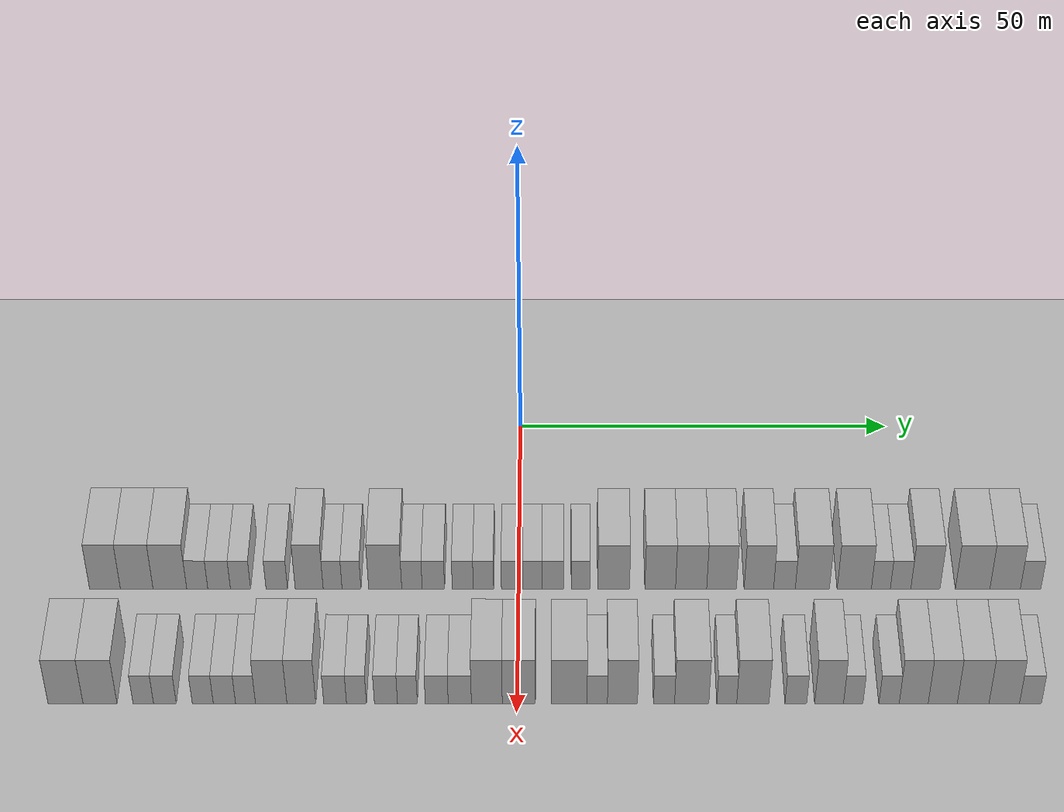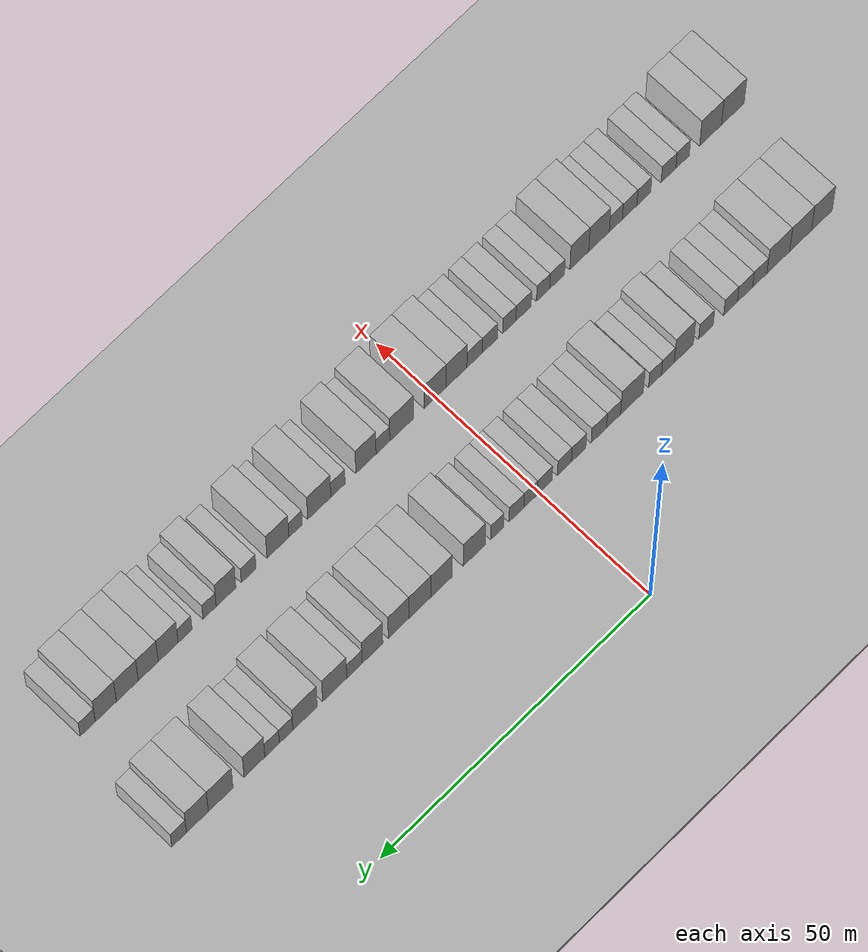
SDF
<sdf version="1.6">
 <world name="default">
  <include><name>ground_plane_1</name><uri>model://HANNAS_ground_plane</uri></include>
  <include>
   <name>ground_plane_2</name>
   <uri>model://HANNAS_ground_plane</uri>
   <pose>100 0 0  0 0 0</pose>
  </include>
  <model name="building_35">
   <static>1</static>
   <pose>25.0000 -53.6690 0 0.000000 0.000000 0.000000</pose>
   <link name="link">
    <pose>0 0 4.50 0 0 0</pose>
    <collision name="collision"><geometry><box><size>10.0000 4.0003 9.0000</size></box></geometry></collision>
    <visual name="visual">
     <cast_shadows>0</cast_shadows>
     <geometry><box><size>10.0000 4.0003 9.0000</size></box></geometry>
     <material>
      <script>
       <uri>model://HANNAS_wall/materials/scripts</uri>
       <uri>model://HANNAS_wall/materials/textures</uri>
       <name>vrc/HANNAS_wall</name>
      </script>
     </material>
    </visual>
   </link>
  </model>
  <model name="building_36">
   <static>1</static>
   <pose>25.0000 -49.5500 0 0.000000 0.000000 0.000000</pose>
   <link name="link">
    <pose>0 0 4.50 0 0 0</pose>
    <collision name="collision"><geometry><box><size>10.0000 4.2375 9.0000</size></box></geometry></collision>
    <visual name="visual">
     <cast_shadows>0</cast_shadows>
     <geometry><box><size>10.0000 4.2375 9.0000</size></box></geometry>
     <material>
      <script>
       <uri>model://HANNAS_wall/materials/scripts</uri>
       <uri>model://HANNAS_wall/materials/textures</uri>
       <name>vrc/HANNAS_wall</name>
      </script>
     </material>
    </visual>
   </link>
  </model>
  <model name="building_37">
   <static>1</static>
   <pose>25.0000 -45.2486 0 0.000000 0.000000 0.000000</pose>
   <link name="link">
    <pose>0 0 4.50 0 0 0</pose>
    <collision name="collision"><geometry><box><size>10.0000 4.3654 9.0000</size></box></geometry></collision>
    <visual name="visual">
     <cast_shadows>0</cast_shadows>
     <geometry><box><size>10.0000 4.3654 9.0000</size></box></geometry>
     <material>
      <script>
       <uri>model://HANNAS_wall/materials/scripts</uri>
       <uri>model://HANNAS_wall/materials/textures</uri>
       <name>vrc/HANNAS_wall</name>
      </script>
     </material>
    </visual>
   </link>
  </model>
  <model name="building_38">
   <static>1</static>
   <pose>25.0000 -41.6955 0 0.000000 0.000000 0.000000</pose>
   <link name="link">
    <pose>0 0 3.00 0 0 0</pose>
    <collision name="collision"><geometry><box><size>10.0000 2.7409 6.0000</size></box></geometry></collision>
    <visual name="visual">
     <cast_shadows>0</cast_shadows>
     <geometry><box><size>10.0000 2.7409 6.0000</size></box></geometry>
     <material>
      <script>
       <uri>model://HANNAS_wall/materials/scripts</uri>
       <uri>model://HANNAS_wall/materials/textures</uri>
       <name>vrc/HANNAS_wall</name>
      </script>
     </material>
    </visual>
   </link>
  </model>
  <model name="building_39">
   <static>1</static>
   <pose>25.0000 -38.8572 0 0.000000 0.000000 0.000000</pose>
   <link name="link">
    <pose>0 0 3.00 0 0 0</pose>
    <collision name="collision"><geometry><box><size>10.0000 2.9356 6.0000</size></box></geometry></collision>
    <visual name="visual">
     <cast_shadows>0</cast_shadows>
     <geometry><box><size>10.0000 2.9356 6.0000</size></box></geometry>
     <material>
      <script>
       <uri>model://HANNAS_wall/materials/scripts</uri>
       <uri>model://HANNAS_wall/materials/textures</uri>
       <name>vrc/HANNAS_wall</name>
      </script>
     </material>
    </visual>
   </link>
  </model>
  <model name="building_40">
   <static>1</static>
   <pose>25.0000 -36.0790 0 0.000000 0.000000 0.000000</pose>
   <link name="link">
    <pose>0 0 3.00 0 0 0</pose>
    <collision name="collision"><geometry><box><size>10.0000 2.6208 6.0000</size></box></geometry></collision>
    <visual name="visual">
     <cast_shadows>0</cast_shadows>
     <geometry><box><size>10.0000 2.6208 6.0000</size></box></geometry>
     <material>
      <script>
       <uri>model://HANNAS_wall/materials/scripts</uri>
       <uri>model://HANNAS_wall/materials/textures</uri>
       <name>vrc/HANNAS_wall</name>
      </script>
     </material>
    </visual>
   </link>
  </model>
  <model name="building_41">
   <static>1</static>
   <pose>25.0000 -31.3737 0 0.000000 0.000000 0.000000</pose>
   <link name="link">
    <pose>0 0 3.00 0 0 0</pose>
    <collision name="collision"><geometry><box><size>10.0000 2.7899 6.0000</size></box></geometry></collision>
    <visual name="visual">
     <cast_shadows>0</cast_shadows>
     <geometry><box><size>10.0000 2.7899 6.0000</size></box></geometry>
     <material>
      <script>
       <uri>model://HANNAS_wall/materials/scripts</uri>
       <uri>model://HANNAS_wall/materials/textures</uri>
       <name>vrc/HANNAS_wall</name>
      </script>
     </material>
    </visual>
   </link>
  </model>
  <model name="building_42">
   <static>1</static>
   <pose>25.0000 -27.1665 0 0.000000 0.000000 0.000000</pose>
   <link name="link">
    <pose>0 0 4.50 0 0 0</pose>
    <collision name="collision"><geometry><box><size>10.0000 3.6244 9.0000</size></box></geometry></collision>
    <visual name="visual">
     <cast_shadows>0</cast_shadows>
     <geometry><box><size>10.0000 3.6244 9.0000</size></box></geometry>
     <material>
      <script>
       <uri>model://HANNAS_wall/materials/scripts</uri>
       <uri>model://HANNAS_wall/materials/textures</uri>
       <name>vrc/HANNAS_wall</name>
      </script>
     </material>
    </visual>
   </link>
  </model>
  <model name="building_43">
   <static>1</static>
   <pose>25.0000 -24.1285 0 0.000000 0.000000 0.000000</pose>
   <link name="link">
    <pose>0 0 3.00 0 0 0</pose>
    <collision name="collision"><geometry><box><size>10.0000 2.4518 6.0000</size></box></geometry></collision>
    <visual name="visual">
     <cast_shadows>0</cast_shadows>
     <geometry><box><size>10.0000 2.4518 6.0000</size></box></geometry>
     <material>
      <script>
       <uri>model://HANNAS_wall/materials/scripts</uri>
       <uri>model://HANNAS_wall/materials/textures</uri>
       <name>vrc/HANNAS_wall</name>
      </script>
     </material>
    </visual>
   </link>
  </model>
  <model name="building_44">
   <static>1</static>
   <pose>25.0000 -21.6762 0 0.000000 0.000000 0.000000</pose>
   <link name="link">
    <pose>0 0 3.00 0 0 0</pose>
    <collision name="collision"><geometry><box><size>10.0000 2.4528 6.0000</size></box></geometry></collision>
    <visual name="visual">
     <cast_shadows>0</cast_shadows>
     <geometry><box><size>10.0000 2.4528 6.0000</size></box></geometry>
     <material>
      <script>
       <uri>model://HANNAS_wall/materials/scripts</uri>
       <uri>model://HANNAS_wall/materials/textures</uri>
       <name>vrc/HANNAS_wall</name>
      </script>
     </material>
    </visual>
   </link>
  </model>
  <model name="building_45">
   <static>1</static>
   <pose>25.0000 -17.3049 0 0.000000 0.000000 0.000000</pose>
   <link name="link">
    <pose>0 0 4.50 0 0 0</pose>
    <collision name="collision"><geometry><box><size>10.0000 4.2897 9.0000</size></box></geometry></collision>
    <visual name="visual">
     <cast_shadows>0</cast_shadows>
     <geometry><box><size>10.0000 4.2897 9.0000</size></box></geometry>
     <material>
      <script>
       <uri>model://HANNAS_wall/materials/scripts</uri>
       <uri>model://HANNAS_wall/materials/textures</uri>
       <name>vrc/HANNAS_wall</name>
      </script>
     </material>
    </visual>
   </link>
  </model>
  <model name="building_46">
   <static>1</static>
   <pose>25.0000 -13.8331 0 0.000000 0.000000 0.000000</pose>
   <link name="link">
    <pose>0 0 3.00 0 0 0</pose>
    <collision name="collision"><geometry><box><size>10.0000 2.6541 6.0000</size></box></geometry></collision>
    <visual name="visual">
     <cast_shadows>0</cast_shadows>
     <geometry><box><size>10.0000 2.6541 6.0000</size></box></geometry>
     <material>
      <script>
       <uri>model://HANNAS_wall/materials/scripts</uri>
       <uri>model://HANNAS_wall/materials/textures</uri>
       <name>vrc/HANNAS_wall</name>
      </script>
     </material>
    </visual>
   </link>
  </model>
  <model name="building_47">
   <static>1</static>
   <pose>25.0000 -11.0533 0 0.000000 0.000000 0.000000</pose>
   <link name="link">
    <pose>0 0 3.00 0 0 0</pose>
    <collision name="collision"><geometry><box><size>10.0000 2.9054 6.0000</size></box></geometry></collision>
    <visual name="visual">
     <cast_shadows>0</cast_shadows>
     <geometry><box><size>10.0000 2.9054 6.0000</size></box></geometry>
     <material>
      <script>
       <uri>model://HANNAS_wall/materials/scripts</uri>
       <uri>model://HANNAS_wall/materials/textures</uri>
       <name>vrc/HANNAS_wall</name>
      </script>
     </material>
    </visual>
   </link>
  </model>
  <model name="building_48">
   <static>1</static>
   <pose>25.0000 -7.2363 0 0.000000 0.000000 0.000000</pose>
   <link name="link">
    <pose>0 0 3.00 0 0 0</pose>
    <collision name="collision"><geometry><box><size>10.0000 2.7287 6.0000</size></box></geometry></collision>
    <visual name="visual">
     <cast_shadows>0</cast_shadows>
     <geometry><box><size>10.0000 2.7287 6.0000</size></box></geometry>
     <material>
      <script>
       <uri>model://HANNAS_wall/materials/scripts</uri>
       <uri>model://HANNAS_wall/materials/textures</uri>
       <name>vrc/HANNAS_wall</name>
      </script>
     </material>
    </visual>
   </link>
  </model>
  <model name="building_49">
   <static>1</static>
   <pose>25.0000 -4.5512 0 0.000000 0.000000 0.000000</pose>
   <link name="link">
    <pose>0 0 3.00 0 0 0</pose>
    <collision name="collision"><geometry><box><size>10.0000 2.6413 6.0000</size></box></geometry></collision>
    <visual name="visual">
     <cast_shadows>0</cast_shadows>
     <geometry><box><size>10.0000 2.6413 6.0000</size></box></geometry>
     <material>
      <script>
       <uri>model://HANNAS_wall/materials/scripts</uri>
       <uri>model://HANNAS_wall/materials/textures</uri>
       <name>vrc/HANNAS_wall</name>
      </script>
     </material>
    </visual>
   </link>
  </model>
  <model name="building_50">
   <static>1</static>
   <pose>25.0000 -0.8488 0 0.000000 0.000000 0.000000</pose>
   <link name="link">
    <pose>0 0 3.00 0 0 0</pose>
    <collision name="collision"><geometry><box><size>10.0000 2.7635 6.0000</size></box></geometry></collision>
    <visual name="visual">
     <cast_shadows>0</cast_shadows>
     <geometry><box><size>10.0000 2.7635 6.0000</size></box></geometry>
     <material>
      <script>
       <uri>model://HANNAS_wall/materials/scripts</uri>
       <uri>model://HANNAS_wall/materials/textures</uri>
       <name>vrc/HANNAS_wall</name>
      </script>
     </material>
    </visual>
   </link>
  </model>
  <model name="building_51">
   <static>1</static>
   <pose>25.0000 1.7864 0 0.000000 0.000000 0.000000</pose>
   <link name="link">
    <pose>0 0 3.00 0 0 0</pose>
    <collision name="collision"><geometry><box><size>10.0000 2.5070 6.0000</size></box></geometry></collision>
    <visual name="visual">
     <cast_shadows>0</cast_shadows>
     <geometry><box><size>10.0000 2.5070 6.0000</size></box></geometry>
     <material>
      <script>
       <uri>model://HANNAS_wall/materials/scripts</uri>
       <uri>model://HANNAS_wall/materials/textures</uri>
       <name>vrc/HANNAS_wall</name>
      </script>
     </material>
    </visual>
   </link>
  </model>
  <model name="building_52">
   <static>1</static>
   <pose>25.0000 4.4324 0 0.000000 0.000000 0.000000</pose>
   <link name="link">
    <pose>0 0 3.00 0 0 0</pose>
    <collision name="collision"><geometry><box><size>10.0000 2.7849 6.0000</size></box></geometry></collision>
    <visual name="visual">
     <cast_shadows>0</cast_shadows>
     <geometry><box><size>10.0000 2.7849 6.0000</size></box></geometry>
     <material>
      <script>
       <uri>model://HANNAS_wall/materials/scripts</uri>
       <uri>model://HANNAS_wall/materials/textures</uri>
       <name>vrc/HANNAS_wall</name>
      </script>
     </material>
    </visual>
   </link>
  </model>
  <model name="building_53">
   <static>1</static>
   <pose>25.0000 8.0485 0 0.000000 0.000000 0.000000</pose>
   <link name="link">
    <pose>0 0 3.00 0 0 0</pose>
    <collision name="collision"><geometry><box><size>10.0000 2.4474 6.0000</size></box></geometry></collision>
    <visual name="visual">
     <cast_shadows>0</cast_shadows>
     <geometry><box><size>10.0000 2.4474 6.0000</size></box></geometry>
     <material>
      <script>
       <uri>model://HANNAS_wall/materials/scripts</uri>
       <uri>model://HANNAS_wall/materials/textures</uri>
       <name>vrc/HANNAS_wall</name>
      </script>
     </material>
    </visual>
   </link>
  </model>
  <model name="building_54">
   <static>1</static>
   <pose>25.0000 12.3292 0 0.000000 0.000000 0.000000</pose>
   <link name="link">
    <pose>0 0 4.50 0 0 0</pose>
    <collision name="collision"><geometry><box><size>10.0000 4.1140 9.0000</size></box></geometry></collision>
    <visual name="visual">
     <cast_shadows>0</cast_shadows>
     <geometry><box><size>10.0000 4.1140 9.0000</size></box></geometry>
     <material>
      <script>
       <uri>model://HANNAS_wall/materials/scripts</uri>
       <uri>model://HANNAS_wall/materials/textures</uri>
       <name>vrc/HANNAS_wall</name>
      </script>
     </material>
    </visual>
   </link>
  </model>
  <model name="building_55">
   <static>1</static>
   <pose>25.0000 18.3756 0 0.000000 0.000000 0.000000</pose>
   <link name="link">
    <pose>0 0 4.50 0 0 0</pose>
    <collision name="collision"><geometry><box><size>10.0000 3.9787 9.0000</size></box></geometry></collision>
    <visual name="visual">
     <cast_shadows>0</cast_shadows>
     <geometry><box><size>10.0000 3.9787 9.0000</size></box></geometry>
     <material>
      <script>
       <uri>model://HANNAS_wall/materials/scripts</uri>
       <uri>model://HANNAS_wall/materials/textures</uri>
       <name>vrc/HANNAS_wall</name>
      </script>
     </material>
    </visual>
   </link>
  </model>
  <model name="building_56">
   <static>1</static>
   <pose>25.0000 22.3830 0 0.000000 0.000000 0.000000</pose>
   <link name="link">
    <pose>0 0 4.50 0 0 0</pose>
    <collision name="collision"><geometry><box><size>10.0000 4.0362 9.0000</size></box></geometry></collision>
    <visual name="visual">
     <cast_shadows>0</cast_shadows>
     <geometry><box><size>10.0000 4.0362 9.0000</size></box></geometry>
     <material>
      <script>
       <uri>model://HANNAS_wall/materials/scripts</uri>
       <uri>model://HANNAS_wall/materials/textures</uri>
       <name>vrc/HANNAS_wall</name>
      </script>
     </material>
    </visual>
   </link>
  </model>
  <model name="building_57">
   <static>1</static>
   <pose>25.0000 26.3301 0 0.000000 0.000000 0.000000</pose>
   <link name="link">
    <pose>0 0 4.50 0 0 0</pose>
    <collision name="collision"><geometry><box><size>10.0000 3.8579 9.0000</size></box></geometry></collision>
    <visual name="visual">
     <cast_shadows>0</cast_shadows>
     <geometry><box><size>10.0000 3.8579 9.0000</size></box></geometry>
     <material>
      <script>
       <uri>model://HANNAS_wall/materials/scripts</uri>
       <uri>model://HANNAS_wall/materials/textures</uri>
       <name>vrc/HANNAS_wall</name>
      </script>
     </material>
    </visual>
   </link>
  </model>
  <model name="building_58">
   <static>1</static>
   <pose>25.0000 31.1724 0 0.000000 0.000000 0.000000</pose>
   <link name="link">
    <pose>0 0 4.50 0 0 0</pose>
    <collision name="collision"><geometry><box><size>10.0000 3.8268 9.0000</size></box></geometry></collision>
    <visual name="visual">
     <cast_shadows>0</cast_shadows>
     <geometry><box><size>10.0000 3.8268 9.0000</size></box></geometry>
     <material>
      <script>
       <uri>model://HANNAS_wall/materials/scripts</uri>
       <uri>model://HANNAS_wall/materials/textures</uri>
       <name>vrc/HANNAS_wall</name>
      </script>
     </material>
    </visual>
   </link>
  </model>
  <model name="building_59">
   <static>1</static>
   <pose>25.0000 34.4945 0 0.000000 0.000000 0.000000</pose>
   <link name="link">
    <pose>0 0 3.00 0 0 0</pose>
    <collision name="collision"><geometry><box><size>10.0000 2.8173 6.0000</size></box></geometry></collision>
    <visual name="visual">
     <cast_shadows>0</cast_shadows>
     <geometry><box><size>10.0000 2.8173 6.0000</size></box></geometry>
     <material>
      <script>
       <uri>model://HANNAS_wall/materials/scripts</uri>
       <uri>model://HANNAS_wall/materials/textures</uri>
       <name>vrc/HANNAS_wall</name>
      </script>
     </material>
    </visual>
   </link>
  </model>
  <model name="building_60">
   <static>1</static>
   <pose>25.0000 38.1174 0 0.000000 0.000000 0.000000</pose>
   <link name="link">
    <pose>0 0 4.50 0 0 0</pose>
    <collision name="collision"><geometry><box><size>10.0000 4.4286 9.0000</size></box></geometry></collision>
    <visual name="visual">
     <cast_shadows>0</cast_shadows>
     <geometry><box><size>10.0000 4.4286 9.0000</size></box></geometry>
     <material>
      <script>
       <uri>model://HANNAS_wall/materials/scripts</uri>
       <uri>model://HANNAS_wall/materials/textures</uri>
       <name>vrc/HANNAS_wall</name>
      </script>
     </material>
    </visual>
   </link>
  </model>
  <model name="building_61">
   <static>1</static>
   <pose>25.0000 43.5494 0 0.000000 0.000000 0.000000</pose>
   <link name="link">
    <pose>0 0 4.50 0 0 0</pose>
    <collision name="collision"><geometry><box><size>10.0000 4.4355 9.0000</size></box></geometry></collision>
    <visual name="visual">
     <cast_shadows>0</cast_shadows>
     <geometry><box><size>10.0000 4.4355 9.0000</size></box></geometry>
     <material>
      <script>
       <uri>model://HANNAS_wall/materials/scripts</uri>
       <uri>model://HANNAS_wall/materials/textures</uri>
       <name>vrc/HANNAS_wall</name>
      </script>
     </material>
    </visual>
   </link>
  </model>
  <model name="building_62">
   <static>1</static>
   <pose>25.0000 46.9996 0 0.000000 0.000000 0.000000</pose>
   <link name="link">
    <pose>0 0 3.00 0 0 0</pose>
    <collision name="collision"><geometry><box><size>10.0000 2.4647 6.0000</size></box></geometry></collision>
    <visual name="visual">
     <cast_shadows>0</cast_shadows>
     <geometry><box><size>10.0000 2.4647 6.0000</size></box></geometry>
     <material>
      <script>
       <uri>model://HANNAS_wall/materials/scripts</uri>
       <uri>model://HANNAS_wall/materials/textures</uri>
       <name>vrc/HANNAS_wall</name>
      </script>
     </material>
    </visual>
   </link>
  </model>
  <model name="building_63">
   <static>1</static>
   <pose>25.0000 49.5599 0 0.000000 0.000000 0.000000</pose>
   <link name="link">
    <pose>0 0 3.00 0 0 0</pose>
    <collision name="collision"><geometry><box><size>10.0000 2.6560 6.0000</size></box></geometry></collision>
    <visual name="visual">
     <cast_shadows>0</cast_shadows>
     <geometry><box><size>10.0000 2.6560 6.0000</size></box></geometry>
     <material>
      <script>
       <uri>model://HANNAS_wall/materials/scripts</uri>
       <uri>model://HANNAS_wall/materials/textures</uri>
       <name>vrc/HANNAS_wall</name>
      </script>
     </material>
    </visual>
   </link>
  </model>
  <model name="building_64">
   <static>1</static>
   <pose>25.0000 52.7791 0 0.000000 0.000000 0.000000</pose>
   <link name="link">
    <pose>0 0 4.50 0 0 0</pose>
    <collision name="collision"><geometry><box><size>10.0000 3.7824 9.0000</size></box></geometry></collision>
    <visual name="visual">
     <cast_shadows>0</cast_shadows>
     <geometry><box><size>10.0000 3.7824 9.0000</size></box></geometry>
     <material>
      <script>
       <uri>model://HANNAS_wall/materials/scripts</uri>
       <uri>model://HANNAS_wall/materials/textures</uri>
       <name>vrc/HANNAS_wall</name>
      </script>
     </material>
    </visual>
   </link>
  </model>
  <model name="building_65">
   <static>1</static>
   <pose>25.0000 58.9103 0 0.000000 0.000000 0.000000</pose>
   <link name="link">
    <pose>0 0 4.50 0 0 0</pose>
    <collision name="collision"><geometry><box><size>10.0000 4.4799 9.0000</size></box></geometry></collision>
    <visual name="visual">
     <cast_shadows>0</cast_shadows>
     <geometry><box><size>10.0000 4.4799 9.0000</size></box></geometry>
     <material>
      <script>
       <uri>model://HANNAS_wall/materials/scripts</uri>
       <uri>model://HANNAS_wall/materials/textures</uri>
       <name>vrc/HANNAS_wall</name>
      </script>
     </material>
    </visual>
   </link>
  </model>
  <model name="building_66">
   <static>1</static>
   <pose>25.0000 63.1264 0 0.000000 0.000000 0.000000</pose>
   <link name="link">
    <pose>0 0 4.50 0 0 0</pose>
    <collision name="collision"><geometry><box><size>10.0000 3.9525 9.0000</size></box></geometry></collision>
    <visual name="visual">
     <cast_shadows>0</cast_shadows>
     <geometry><box><size>10.0000 3.9525 9.0000</size></box></geometry>
     <material>
      <script>
       <uri>model://HANNAS_wall/materials/scripts</uri>
       <uri>model://HANNAS_wall/materials/textures</uri>
       <name>vrc/HANNAS_wall</name>
      </script>
     </material>
    </visual>
   </link>
  </model>
  <model name="building_67">
   <static>1</static>
   <pose>25.0000 66.4353 0 0.000000 0.000000 0.000000</pose>
   <link name="link">
    <pose>0 0 3.00 0 0 0</pose>
    <collision name="collision"><geometry><box><size>10.0000 2.6653 6.0000</size></box></geometry></collision>
    <visual name="visual">
     <cast_shadows>0</cast_shadows>
     <geometry><box><size>10.0000 2.6653 6.0000</size></box></geometry>
     <material>
      <script>
       <uri>model://HANNAS_wall/materials/scripts</uri>
       <uri>model://HANNAS_wall/materials/textures</uri>
       <name>vrc/HANNAS_wall</name>
      </script>
     </material>
    </visual>
   </link>
  </model>
  <model name="building_133">
   <static>1</static>
   <pose>44.0000 -56.4995 0 0.000000 0.000000 0.000000</pose>
   <link name="link">
    <pose>0 0 4.50 0 0 0</pose>
    <collision name="collision"><geometry><box><size>10.0000 4.3740 9.0000</size></box></geometry></collision>
    <visual name="visual">
     <cast_shadows>0</cast_shadows>
     <geometry><box><size>10.0000 4.3740 9.0000</size></box></geometry>
     <material>
      <script>
       <uri>model://HANNAS_wall/materials/scripts</uri>
       <uri>model://HANNAS_wall/materials/textures</uri>
       <name>vrc/HANNAS_wall</name>
      </script>
     </material>
    </visual>
   </link>
  </model>
  <model name="building_134">
   <static>1</static>
   <pose>44.0000 -52.1873 0 0.000000 0.000000 0.000000</pose>
   <link name="link">
    <pose>0 0 4.50 0 0 0</pose>
    <collision name="collision"><geometry><box><size>10.0000 4.2502 9.0000</size></box></geometry></collision>
    <visual name="visual">
     <cast_shadows>0</cast_shadows>
     <geometry><box><size>10.0000 4.2502 9.0000</size></box></geometry>
     <material>
      <script>
       <uri>model://HANNAS_wall/materials/scripts</uri>
       <uri>model://HANNAS_wall/materials/textures</uri>
       <name>vrc/HANNAS_wall</name>
      </script>
     </material>
    </visual>
   </link>
  </model>
  <model name="building_135">
   <static>1</static>
   <pose>44.0000 -46.7773 0 0.000000 0.000000 0.000000</pose>
   <link name="link">
    <pose>0 0 3.00 0 0 0</pose>
    <collision name="collision"><geometry><box><size>10.0000 2.5698 6.0000</size></box></geometry></collision>
    <visual name="visual">
     <cast_shadows>0</cast_shadows>
     <geometry><box><size>10.0000 2.5698 6.0000</size></box></geometry>
     <material>
      <script>
       <uri>model://HANNAS_wall/materials/scripts</uri>
       <uri>model://HANNAS_wall/materials/textures</uri>
       <name>vrc/HANNAS_wall</name>
      </script>
     </material>
    </visual>
   </link>
  </model>
  <model name="building_136">
   <static>1</static>
   <pose>44.0000 -44.0704 0 0.000000 0.000000 0.000000</pose>
   <link name="link">
    <pose>0 0 3.00 0 0 0</pose>
    <collision name="collision"><geometry><box><size>10.0000 2.8441 6.0000</size></box></geometry></collision>
    <visual name="visual">
     <cast_shadows>0</cast_shadows>
     <geometry><box><size>10.0000 2.8441 6.0000</size></box></geometry>
     <material>
      <script>
       <uri>model://HANNAS_wall/materials/scripts</uri>
       <uri>model://HANNAS_wall/materials/textures</uri>
       <name>vrc/HANNAS_wall</name>
      </script>
     </material>
    </visual>
   </link>
  </model>
  <model name="building_137">
   <static>1</static>
   <pose>44.0000 -39.3341 0 0.000000 0.000000 0.000000</pose>
   <link name="link">
    <pose>0 0 3.00 0 0 0</pose>
    <collision name="collision"><geometry><box><size>10.0000 2.6285 6.0000</size></box></geometry></collision>
    <visual name="visual">
     <cast_shadows>0</cast_shadows>
     <geometry><box><size>10.0000 2.6285 6.0000</size></box></geometry>
     <material>
      <script>
       <uri>model://HANNAS_wall/materials/scripts</uri>
       <uri>model://HANNAS_wall/materials/textures</uri>
       <name>vrc/HANNAS_wall</name>
      </script>
     </material>
    </visual>
   </link>
  </model>
  <model name="building_138">
   <static>1</static>
   <pose>44.0000 -36.6264 0 0.000000 0.000000 0.000000</pose>
   <link name="link">
    <pose>0 0 3.00 0 0 0</pose>
    <collision name="collision"><geometry><box><size>10.0000 2.7869 6.0000</size></box></geometry></collision>
    <visual name="visual">
     <cast_shadows>0</cast_shadows>
     <geometry><box><size>10.0000 2.7869 6.0000</size></box></geometry>
     <material>
      <script>
       <uri>model://HANNAS_wall/materials/scripts</uri>
       <uri>model://HANNAS_wall/materials/textures</uri>
       <name>vrc/HANNAS_wall</name>
      </script>
     </material>
    </visual>
   </link>
  </model>
  <model name="building_139">
   <static>1</static>
   <pose>44.0000 -33.9862 0 0.000000 0.000000 0.000000</pose>
   <link name="link">
    <pose>0 0 3.00 0 0 0</pose>
    <collision name="collision"><geometry><box><size>10.0000 2.4935 6.0000</size></box></geometry></collision>
    <visual name="visual">
     <cast_shadows>0</cast_shadows>
     <geometry><box><size>10.0000 2.4935 6.0000</size></box></geometry>
     <material>
      <script>
       <uri>model://HANNAS_wall/materials/scripts</uri>
       <uri>model://HANNAS_wall/materials/textures</uri>
       <name>vrc/HANNAS_wall</name>
      </script>
     </material>
    </visual>
   </link>
  </model>
  <model name="building_140">
   <static>1</static>
   <pose>44.0000 -30.7716 0 0.000000 0.000000 0.000000</pose>
   <link name="link">
    <pose>0 0 4.50 0 0 0</pose>
    <collision name="collision"><geometry><box><size>10.0000 3.9357 9.0000</size></box></geometry></collision>
    <visual name="visual">
     <cast_shadows>0</cast_shadows>
     <geometry><box><size>10.0000 3.9357 9.0000</size></box></geometry>
     <material>
      <script>
       <uri>model://HANNAS_wall/materials/scripts</uri>
       <uri>model://HANNAS_wall/materials/textures</uri>
       <name>vrc/HANNAS_wall</name>
      </script>
     </material>
    </visual>
   </link>
  </model>
  <model name="building_141">
   <static>1</static>
   <pose>44.0000 -26.9978 0 0.000000 0.000000 0.000000</pose>
   <link name="link">
    <pose>0 0 4.50 0 0 0</pose>
    <collision name="collision"><geometry><box><size>10.0000 3.6120 9.0000</size></box></geometry></collision>
    <visual name="visual">
     <cast_shadows>0</cast_shadows>
     <geometry><box><size>10.0000 3.6120 9.0000</size></box></geometry>
     <material>
      <script>
       <uri>model://HANNAS_wall/materials/scripts</uri>
       <uri>model://HANNAS_wall/materials/textures</uri>
       <name>vrc/HANNAS_wall</name>
      </script>
     </material>
    </visual>
   </link>
  </model>
  <model name="building_142">
   <static>1</static>
   <pose>44.0000 -22.7706 0 0.000000 0.000000 0.000000</pose>
   <link name="link">
    <pose>0 0 3.00 0 0 0</pose>
    <collision name="collision"><geometry><box><size>10.0000 2.8425 6.0000</size></box></geometry></collision>
    <visual name="visual">
     <cast_shadows>0</cast_shadows>
     <geometry><box><size>10.0000 2.8425 6.0000</size></box></geometry>
     <material>
      <script>
       <uri>model://HANNAS_wall/materials/scripts</uri>
       <uri>model://HANNAS_wall/materials/textures</uri>
       <name>vrc/HANNAS_wall</name>
      </script>
     </material>
    </visual>
   </link>
  </model>
  <model name="building_143">
   <static>1</static>
   <pose>44.0000 -20.1042 0 0.000000 0.000000 0.000000</pose>
   <link name="link">
    <pose>0 0 3.00 0 0 0</pose>
    <collision name="collision"><geometry><box><size>10.0000 2.4904 6.0000</size></box></geometry></collision>
    <visual name="visual">
     <cast_shadows>0</cast_shadows>
     <geometry><box><size>10.0000 2.4904 6.0000</size></box></geometry>
     <material>
      <script>
       <uri>model://HANNAS_wall/materials/scripts</uri>
       <uri>model://HANNAS_wall/materials/textures</uri>
       <name>vrc/HANNAS_wall</name>
      </script>
     </material>
    </visual>
   </link>
  </model>
  <model name="building_144">
   <static>1</static>
   <pose>44.0000 -16.4152 0 0.000000 0.000000 0.000000</pose>
   <link name="link">
    <pose>0 0 3.00 0 0 0</pose>
    <collision name="collision"><geometry><box><size>10.0000 2.8875 6.0000</size></box></geometry></collision>
    <visual name="visual">
     <cast_shadows>0</cast_shadows>
     <geometry><box><size>10.0000 2.8875 6.0000</size></box></geometry>
     <material>
      <script>
       <uri>model://HANNAS_wall/materials/scripts</uri>
       <uri>model://HANNAS_wall/materials/textures</uri>
       <name>vrc/HANNAS_wall</name>
      </script>
     </material>
    </visual>
   </link>
  </model>
  <model name="building_145">
   <static>1</static>
   <pose>44.0000 -13.7294 0 0.000000 0.000000 0.000000</pose>
   <link name="link">
    <pose>0 0 3.00 0 0 0</pose>
    <collision name="collision"><geometry><box><size>10.0000 2.4841 6.0000</size></box></geometry></collision>
    <visual name="visual">
     <cast_shadows>0</cast_shadows>
     <geometry><box><size>10.0000 2.4841 6.0000</size></box></geometry>
     <material>
      <script>
       <uri>model://HANNAS_wall/materials/scripts</uri>
       <uri>model://HANNAS_wall/materials/textures</uri>
       <name>vrc/HANNAS_wall</name>
      </script>
     </material>
    </visual>
   </link>
  </model>
  <model name="building_146">
   <static>1</static>
   <pose>44.0000 -10.0547 0 0.000000 0.000000 0.000000</pose>
   <link name="link">
    <pose>0 0 3.00 0 0 0</pose>
    <collision name="collision"><geometry><box><size>10.0000 2.8652 6.0000</size></box></geometry></collision>
    <visual name="visual">
     <cast_shadows>0</cast_shadows>
     <geometry><box><size>10.0000 2.8652 6.0000</size></box></geometry>
     <material>
      <script>
       <uri>model://HANNAS_wall/materials/scripts</uri>
       <uri>model://HANNAS_wall/materials/textures</uri>
       <name>vrc/HANNAS_wall</name>
      </script>
     </material>
    </visual>
   </link>
  </model>
  <model name="building_147">
   <static>1</static>
   <pose>44.0000 -7.1719 0 0.000000 0.000000 0.000000</pose>
   <link name="link">
    <pose>0 0 3.00 0 0 0</pose>
    <collision name="collision"><geometry><box><size>10.0000 2.9004 6.0000</size></box></geometry></collision>
    <visual name="visual">
     <cast_shadows>0</cast_shadows>
     <geometry><box><size>10.0000 2.9004 6.0000</size></box></geometry>
     <material>
      <script>
       <uri>model://HANNAS_wall/materials/scripts</uri>
       <uri>model://HANNAS_wall/materials/textures</uri>
       <name>vrc/HANNAS_wall</name>
      </script>
     </material>
    </visual>
   </link>
  </model>
  <model name="building_148">
   <static>1</static>
   <pose>44.0000 -3.7938 0 0.000000 0.000000 0.000000</pose>
   <link name="link">
    <pose>0 0 4.50 0 0 0</pose>
    <collision name="collision"><geometry><box><size>10.0000 3.8558 9.0000</size></box></geometry></collision>
    <visual name="visual">
     <cast_shadows>0</cast_shadows>
     <geometry><box><size>10.0000 3.8558 9.0000</size></box></geometry>
     <material>
      <script>
       <uri>model://HANNAS_wall/materials/scripts</uri>
       <uri>model://HANNAS_wall/materials/textures</uri>
       <name>vrc/HANNAS_wall</name>
      </script>
     </material>
    </visual>
   </link>
  </model>
  <model name="building_149">
   <static>1</static>
   <pose>44.0000 0.2073 0 0.000000 0.000000 0.000000</pose>
   <link name="link">
    <pose>0 0 4.50 0 0 0</pose>
    <collision name="collision"><geometry><box><size>10.0000 4.1465 9.0000</size></box></geometry></collision>
    <visual name="visual">
     <cast_shadows>0</cast_shadows>
     <geometry><box><size>10.0000 4.1465 9.0000</size></box></geometry>
     <material>
      <script>
       <uri>model://HANNAS_wall/materials/scripts</uri>
       <uri>model://HANNAS_wall/materials/textures</uri>
       <name>vrc/HANNAS_wall</name>
      </script>
     </material>
    </visual>
   </link>
  </model>
  <model name="building_150">
   <static>1</static>
   <pose>44.0000 6.5063 0 0.000000 0.000000 0.000000</pose>
   <link name="link">
    <pose>0 0 4.50 0 0 0</pose>
    <collision name="collision"><geometry><box><size>10.0000 4.4514 9.0000</size></box></geometry></collision>
    <visual name="visual">
     <cast_shadows>0</cast_shadows>
     <geometry><box><size>10.0000 4.4514 9.0000</size></box></geometry>
     <material>
      <script>
       <uri>model://HANNAS_wall/materials/scripts</uri>
       <uri>model://HANNAS_wall/materials/textures</uri>
       <name>vrc/HANNAS_wall</name>
      </script>
     </material>
    </visual>
   </link>
  </model>
  <model name="building_151">
   <static>1</static>
   <pose>44.0000 10.0080 0 0.000000 0.000000 0.000000</pose>
   <link name="link">
    <pose>0 0 3.00 0 0 0</pose>
    <collision name="collision"><geometry><box><size>10.0000 2.5519 6.0000</size></box></geometry></collision>
    <visual name="visual">
     <cast_shadows>0</cast_shadows>
     <geometry><box><size>10.0000 2.5519 6.0000</size></box></geometry>
     <material>
      <script>
       <uri>model://HANNAS_wall/materials/scripts</uri>
       <uri>model://HANNAS_wall/materials/textures</uri>
       <name>vrc/HANNAS_wall</name>
      </script>
     </material>
    </visual>
   </link>
  </model>
  <model name="building_152">
   <static>1</static>
   <pose>44.0000 13.1653 0 0.000000 0.000000 0.000000</pose>
   <link name="link">
    <pose>0 0 4.50 0 0 0</pose>
    <collision name="collision"><geometry><box><size>10.0000 3.7626 9.0000</size></box></geometry></collision>
    <visual name="visual">
     <cast_shadows>0</cast_shadows>
     <geometry><box><size>10.0000 3.7626 9.0000</size></box></geometry>
     <material>
      <script>
       <uri>model://HANNAS_wall/materials/scripts</uri>
       <uri>model://HANNAS_wall/materials/textures</uri>
       <name>vrc/HANNAS_wall</name>
      </script>
     </material>
    </visual>
   </link>
  </model>
  <model name="building_153">
   <static>1</static>
   <pose>44.0000 18.3649 0 0.000000 0.000000 0.000000</pose>
   <link name="link">
    <pose>0 0 3.00 0 0 0</pose>
    <collision name="collision"><geometry><box><size>10.0000 2.6368 6.0000</size></box></geometry></collision>
    <visual name="visual">
     <cast_shadows>0</cast_shadows>
     <geometry><box><size>10.0000 2.6368 6.0000</size></box></geometry>
     <material>
      <script>
       <uri>model://HANNAS_wall/materials/scripts</uri>
       <uri>model://HANNAS_wall/materials/textures</uri>
       <name>vrc/HANNAS_wall</name>
      </script>
     </material>
    </visual>
   </link>
  </model>
  <model name="building_154">
   <static>1</static>
   <pose>44.0000 21.8281 0 0.000000 0.000000 0.000000</pose>
   <link name="link">
    <pose>0 0 4.50 0 0 0</pose>
    <collision name="collision"><geometry><box><size>10.0000 4.2895 9.0000</size></box></geometry></collision>
    <visual name="visual">
     <cast_shadows>0</cast_shadows>
     <geometry><box><size>10.0000 4.2895 9.0000</size></box></geometry>
     <material>
      <script>
       <uri>model://HANNAS_wall/materials/scripts</uri>
       <uri>model://HANNAS_wall/materials/textures</uri>
       <name>vrc/HANNAS_wall</name>
      </script>
     </material>
    </visual>
   </link>
  </model>
  <model name="building_155">
   <static>1</static>
   <pose>44.0000 26.2145 0 0.000000 0.000000 0.000000</pose>
   <link name="link">
    <pose>0 0 3.00 0 0 0</pose>
    <collision name="collision"><geometry><box><size>10.0000 2.4833 6.0000</size></box></geometry></collision>
    <visual name="visual">
     <cast_shadows>0</cast_shadows>
     <geometry><box><size>10.0000 2.4833 6.0000</size></box></geometry>
     <material>
      <script>
       <uri>model://HANNAS_wall/materials/scripts</uri>
       <uri>model://HANNAS_wall/materials/textures</uri>
       <name>vrc/HANNAS_wall</name>
      </script>
     </material>
    </visual>
   </link>
  </model>
  <model name="building_156">
   <static>1</static>
   <pose>44.0000 29.4748 0 0.000000 0.000000 0.000000</pose>
   <link name="link">
    <pose>0 0 4.50 0 0 0</pose>
    <collision name="collision"><geometry><box><size>10.0000 4.0372 9.0000</size></box></geometry></collision>
    <visual name="visual">
     <cast_shadows>0</cast_shadows>
     <geometry><box><size>10.0000 4.0372 9.0000</size></box></geometry>
     <material>
      <script>
       <uri>model://HANNAS_wall/materials/scripts</uri>
       <uri>model://HANNAS_wall/materials/textures</uri>
       <name>vrc/HANNAS_wall</name>
      </script>
     </material>
    </visual>
   </link>
  </model>
  <model name="building_157">
   <static>1</static>
   <pose>44.0000 34.8521 0 0.000000 0.000000 0.000000</pose>
   <link name="link">
    <pose>0 0 3.00 0 0 0</pose>
    <collision name="collision"><geometry><box><size>10.0000 2.7174 6.0000</size></box></geometry></collision>
    <visual name="visual">
     <cast_shadows>0</cast_shadows>
     <geometry><box><size>10.0000 2.7174 6.0000</size></box></geometry>
     <material>
      <script>
       <uri>model://HANNAS_wall/materials/scripts</uri>
       <uri>model://HANNAS_wall/materials/textures</uri>
       <name>vrc/HANNAS_wall</name>
      </script>
     </material>
    </visual>
   </link>
  </model>
  <model name="building_158">
   <static>1</static>
   <pose>44.0000 39.0144 0 0.000000 0.000000 0.000000</pose>
   <link name="link">
    <pose>0 0 4.50 0 0 0</pose>
    <collision name="collision"><geometry><box><size>10.0000 3.6072 9.0000</size></box></geometry></collision>
    <visual name="visual">
     <cast_shadows>0</cast_shadows>
     <geometry><box><size>10.0000 3.6072 9.0000</size></box></geometry>
     <material>
      <script>
       <uri>model://HANNAS_wall/materials/scripts</uri>
       <uri>model://HANNAS_wall/materials/textures</uri>
       <name>vrc/HANNAS_wall</name>
      </script>
     </material>
    </visual>
   </link>
  </model>
  <model name="building_159">
   <static>1</static>
   <pose>44.0000 42.0311 0 0.000000 0.000000 0.000000</pose>
   <link name="link">
    <pose>0 0 3.00 0 0 0</pose>
    <collision name="collision"><geometry><box><size>10.0000 2.4263 6.0000</size></box></geometry></collision>
    <visual name="visual">
     <cast_shadows>0</cast_shadows>
     <geometry><box><size>10.0000 2.4263 6.0000</size></box></geometry>
     <material>
      <script>
       <uri>model://HANNAS_wall/materials/scripts</uri>
       <uri>model://HANNAS_wall/materials/textures</uri>
       <name>vrc/HANNAS_wall</name>
      </script>
     </material>
    </visual>
   </link>
  </model>
  <model name="building_160">
   <static>1</static>
   <pose>44.0000 46.5129 0 0.000000 0.000000 0.000000</pose>
   <link name="link">
    <pose>0 0 3.00 0 0 0</pose>
    <collision name="collision"><geometry><box><size>10.0000 2.5373 6.0000</size></box></geometry></collision>
    <visual name="visual">
     <cast_shadows>0</cast_shadows>
     <geometry><box><size>10.0000 2.5373 6.0000</size></box></geometry>
     <material>
      <script>
       <uri>model://HANNAS_wall/materials/scripts</uri>
       <uri>model://HANNAS_wall/materials/textures</uri>
       <name>vrc/HANNAS_wall</name>
      </script>
     </material>
    </visual>
   </link>
  </model>
  <model name="building_161">
   <static>1</static>
   <pose>44.0000 49.5948 0 0.000000 0.000000 0.000000</pose>
   <link name="link">
    <pose>0 0 4.50 0 0 0</pose>
    <collision name="collision"><geometry><box><size>10.0000 3.6264 9.0000</size></box></geometry></collision>
    <visual name="visual">
     <cast_shadows>0</cast_shadows>
     <geometry><box><size>10.0000 3.6264 9.0000</size></box></geometry>
     <material>
      <script>
       <uri>model://HANNAS_wall/materials/scripts</uri>
       <uri>model://HANNAS_wall/materials/textures</uri>
       <name>vrc/HANNAS_wall</name>
      </script>
     </material>
    </visual>
   </link>
  </model>
  <model name="building_162">
   <static>1</static>
   <pose>44.0000 53.2250 0 0.000000 0.000000 0.000000</pose>
   <link name="link">
    <pose>0 0 4.50 0 0 0</pose>
    <collision name="collision"><geometry><box><size>10.0000 3.6340 9.0000</size></box></geometry></collision>
    <visual name="visual">
     <cast_shadows>0</cast_shadows>
     <geometry><box><size>10.0000 3.6340 9.0000</size></box></geometry>
     <material>
      <script>
       <uri>model://HANNAS_wall/materials/scripts</uri>
       <uri>model://HANNAS_wall/materials/textures</uri>
       <name>vrc/HANNAS_wall</name>
      </script>
     </material>
    </visual>
   </link>
  </model>
  <model name="building_163">
   <static>1</static>
   <pose>44.0000 57.0269 0 0.000000 0.000000 0.000000</pose>
   <link name="link">
    <pose>0 0 4.50 0 0 0</pose>
    <collision name="collision"><geometry><box><size>10.0000 3.9699 9.0000</size></box></geometry></collision>
    <visual name="visual">
     <cast_shadows>0</cast_shadows>
     <geometry><box><size>10.0000 3.9699 9.0000</size></box></geometry>
     <material>
      <script>
       <uri>model://HANNAS_wall/materials/scripts</uri>
       <uri>model://HANNAS_wall/materials/textures</uri>
       <name>vrc/HANNAS_wall</name>
      </script>
     </material>
    </visual>
   </link>
  </model>
  <model name="building_164">
   <static>1</static>
   <pose>44.0000 60.9191 0 0.000000 0.000000 0.000000</pose>
   <link name="link">
    <pose>0 0 4.50 0 0 0</pose>
    <collision name="collision"><geometry><box><size>10.0000 3.8144 9.0000</size></box></geometry></collision>
    <visual name="visual">
     <cast_shadows>0</cast_shadows>
     <geometry><box><size>10.0000 3.8144 9.0000</size></box></geometry>
     <material>
      <script>
       <uri>model://HANNAS_wall/materials/scripts</uri>
       <uri>model://HANNAS_wall/materials/textures</uri>
       <name>vrc/HANNAS_wall</name>
      </script>
     </material>
    </visual>
   </link>
  </model>
  <model name="building_165">
   <static>1</static>
   <pose>44.0000 64.1963 0 0.000000 0.000000 0.000000</pose>
   <link name="link">
    <pose>0 0 3.00 0 0 0</pose>
    <collision name="collision"><geometry><box><size>10.0000 2.7402 6.0000</size></box></geometry></collision>
    <visual name="visual">
     <cast_shadows>0</cast_shadows>
     <geometry><box><size>10.0000 2.7402 6.0000</size></box></geometry>
     <material>
      <script>
       <uri>model://HANNAS_wall/materials/scripts</uri>
       <uri>model://HANNAS_wall/materials/textures</uri>
       <name>vrc/HANNAS_wall</name>
      </script>
     </material>
    </visual>
   </link>
  </model>
 </world>
</sdf>
